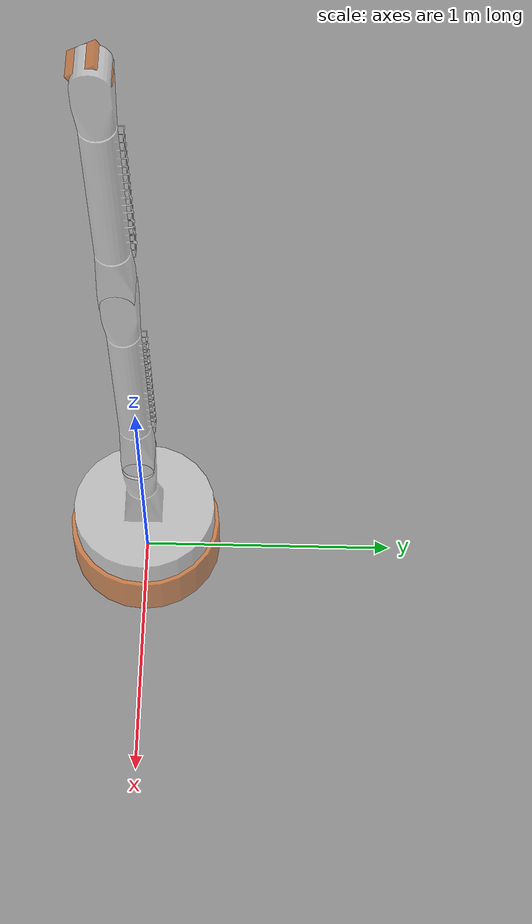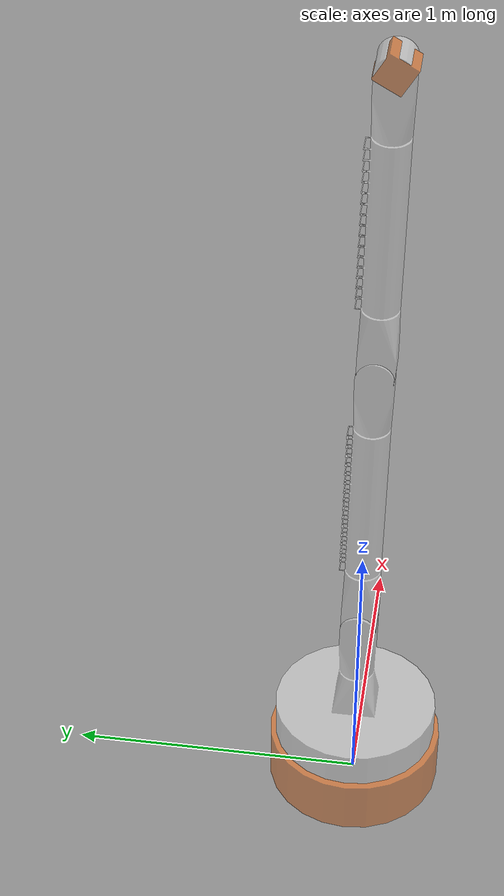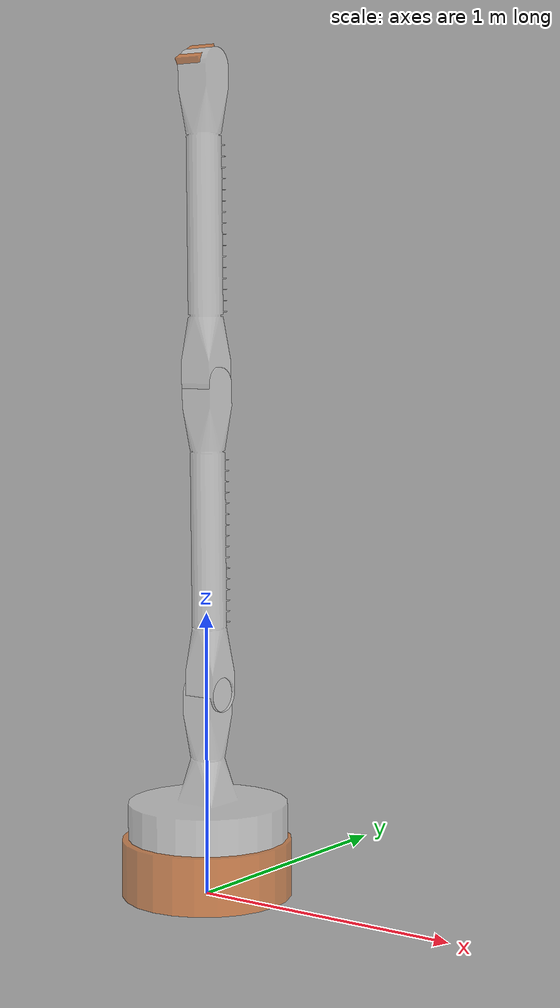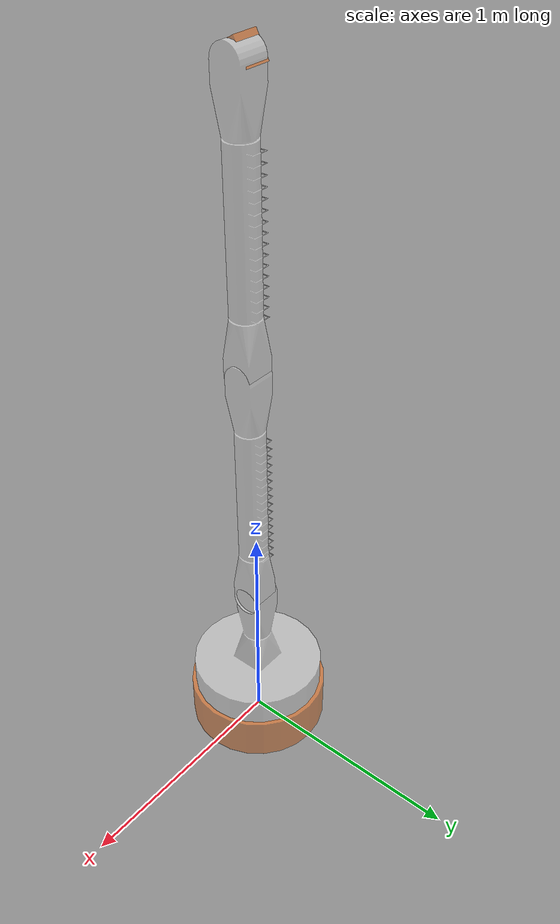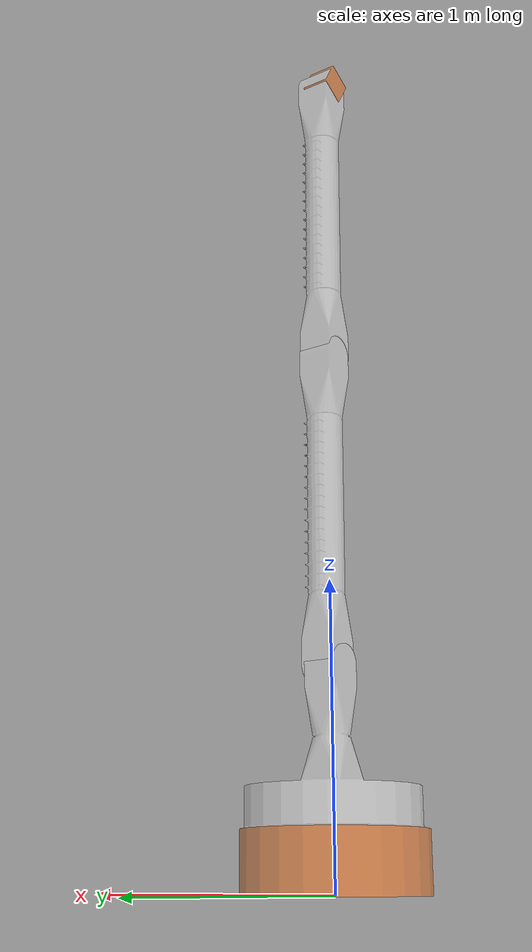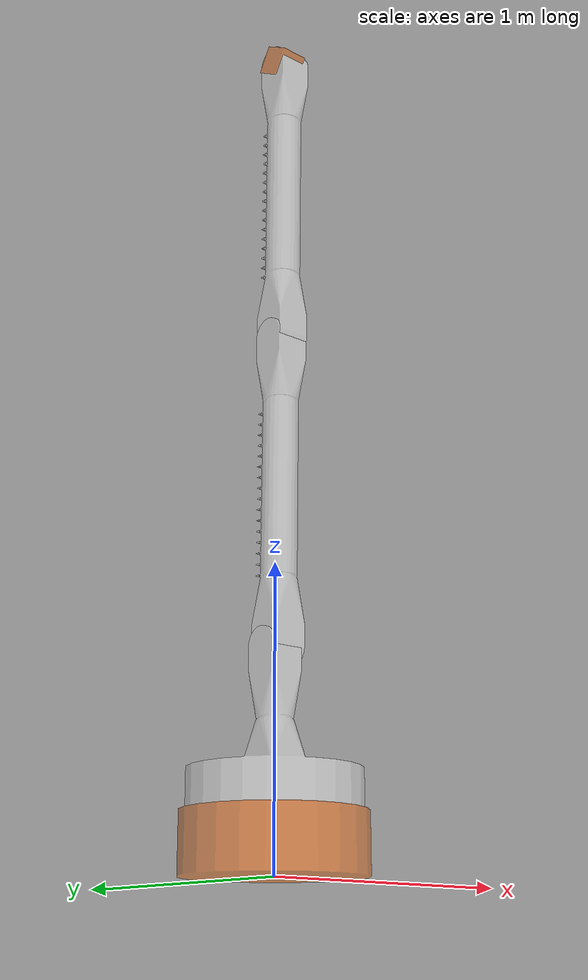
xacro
<?xml version="1.0"?>

<robot name="rrr_bot" xmlns:xacro="http://www.ros.org/wiki/xacro">
    <!-- INCLUDE XACRO-->
    <xacro:include filename="$(find first_rrr)/urdf/names.xacro"/>
    <xacro:include filename="$(find first_rrr)/urdf/material.xacro"/>
    <xacro:include filename="$(find first_rrr)/urdf/robot_rrr.gazebo"/>
    <!-- Virtual link of world SDR-->
    <link name="world"/>

    <link name="${b_l}">
        <visual>
            <origin xyz="0 0 0.1" rpy="0 0 0"/>
            <geometry>
                <cylinder radius="0.3" length="0.2"/>
            </geometry>
            <material name="orange"/>
        </visual>
        <collision>
            <origin xyz="0 0 0.1" rpy="0 0 0"/>
            <geometry>
                <cylinder radius="0.3" length="0.2"/>
            </geometry>
        </collision>
        <inertial>
            <origin xyz="0 0 0.1" rpy="0 0 0"/>
            <mass value="${mass_l1}"/>
            <inertia
            ixx="${inertial}" ixy="0.0" ixz="0.0"
            iyy="${inertial}" iyz="0.0"
            izz="${inertial}"/>
        </inertial>
    </link>

    <joint name="world_robot_fix_jnt" type="fixed">
        <parent link="world"/>
        <child link="${b_l}"/>
    </joint>

    <link name="${l1}">
        <visual>
            <origin xyz="0 0 0" rpy="0 0 0"/>
            <geometry>
            <mesh filename="package://first_rrr/urdf/STL/base.stl" scale="0.1 0.1 0.1"/>
            </geometry>
            <material name="white"/>
        </visual>
        <collision>
            <origin xyz="0 0 0" rpy="0 0 0"/>
            <geometry>
                <cylinder radius="0.3" length="0.319"/>
            </geometry>
        </collision>
        <inertial>
            <origin xyz="0 0 0.1" rpy="0 0 0"/>
            <mass value="${mass_l1}"/>
            <inertia
            ixx="${inertial}" ixy="0.0" ixz="0.0"
            iyy="${inertial}" iyz="0.0"
            izz="${inertial}"/>
        </inertial>
    </link>

    <joint name="${j1}" type="continuous">
        <parent link="${b_l}"/>
        <child link="${l1}"/>
        <origin xyz="0 0 0.2"/>
        <axis xyz="0 0 1"/>
    </joint>

    <link name="${l2}">
        <visual>
            <origin xyz="0 -0.005 -0.065" rpy="0 0 0"/>
            <geometry>
            <mesh filename="package://first_rrr/urdf/STL/birinci_kol.stl" scale="0.1 0.1 0.1"/>

            </geometry>
            <material name="white"/>
        </visual>
        <inertial>
            <origin xyz="0 0 0.1" rpy="0 0 0"/>
            <mass value="${mass_l1}"/>
            <inertia
            ixx="${inertial}" ixy="0.0" ixz="0.0"
            iyy="${inertial}" iyz="0.0"
            izz="${inertial}"/>
        </inertial>
        <collision>
             <origin xyz="0 0 0.5" rpy="0 0 0"/>
            <geometry>
                <cylinder radius="0.1" length="1.3"/>
            </geometry>
        </collision>
    </link>
     <joint name="${j2}" type="continuous">
        <parent link="${l1}"/>
        <child link="${l2}"/>
        <origin xyz="0 0.0005 0.519" rpy="${PI/6} 0 0"/>
        <axis xyz="1 0 0"/>

    </joint>
<link name="${l3}">
    <visual>
        <origin xyz="0 -0.005 -0.065" rpy="0 0 0"/>
        <geometry>
        <mesh filename="package://first_rrr/urdf/STL/birinci_kol.stl" scale="0.1 0.1 0.1"/>

        </geometry>
        <material name="white"/>
    </visual>
    <inertial>
        <origin xyz="0 0 0.1" rpy="0 0 0"/>
        <mass value="${mass_l1}"/>
        <inertia
        ixx="${inertial}" ixy="0.0" ixz="0.0"
        iyy="${inertial}" iyz="0.0"
        izz="${inertial}"/>
    </inertial>
    <collision>
            <origin xyz="0 0 0.5" rpy="0 0 0"/>
        <geometry>
            <cylinder radius="0.1" length="1.3"/>
        </geometry>
    </collision>
</link>
    <joint name="${j3}" type="continuous">
    <parent link="${l2}"/>
    <child link="${l3}"/>
    <origin xyz="0 0.53 0.95" rpy="0 0 0"/>
    <axis xyz="1 0 0"/>

</joint>
<link name="${l4}">
    <visual>
        <origin xyz="0 0 0" rpy="0 0 0"/>
        <geometry>
            <box size="0.1 0.1 0.1"/>

        </geometry>
        <material name="orange"/>
    </visual>
    <inertial>
        <origin xyz="0 0 0.1" rpy="0 0 0"/>
        <mass value="${mass_l1}"/>
        <inertia
        ixx="${inertial}" ixy="0.0" ixz="0.0"
        iyy="${inertial}" iyz="0.0"
        izz="${inertial}"/>
    </inertial>
    <collision>
            <origin xyz="0 0 0" rpy="0 0 0"/>
        <geometry>
            <box size="0.1 0.1 0.1"/>
        </geometry>
    </collision>
</link>
    <joint name="ee_joint" type="fixed">
    <parent link="${l3}"/>
    <child link="${l4}"/>
    <origin xyz="0 0.53 0.95" rpy="0 0 0"/>

</joint>
    <transmission name="tran1">
        <type>transmission_interface/SimpleTransmission</type>
        <joint name="${j1}">
            <hardwareInterface>hardware_interface/EffortJointInterface</hardwareInterface>
        </joint>
        <actuator name="motor1">
            <hardwareInterface>hardware_interface/EffortJointInterface</hardwareInterface>
            <mechanicalReduction>1</mechanicalReduction>
        </actuator>
    </transmission>

    <transmission name="tran2">
        <type>transmission_interface/SimpleTransmission</type>
        <joint name="${j2}">
        <hardwareInterface>hardware_interface/EffortJointInterface</hardwareInterface>
        </joint>
        <actuator name="motor2">
            <hardwareInterface>hardware_interface/EffortJointInterface</hardwareInterface>
            <mechanicalReduction>1</mechanicalReduction>
        </actuator>
    </transmission>

    <transmission name="tran3">
        <type>transmission_interface/SimpleTransmission</type>
        <joint name="${j3}">
        <hardwareInterface>hardware_interface/EffortJointInterface</hardwareInterface>
        </joint>
        <actuator name="motor3">
            <hardwareInterface>hardware_interface/EffortJointInterface</hardwareInterface>
            <mechanicalReduction>1</mechanicalReduction>
        </actuator>
    </transmission>
</robot>

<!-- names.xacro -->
<robot  xmlns:xacro="http://www.ros.org/wiki/xacro">
    <xacro:property name="b_l"  value="base_link"/>
    <xacro:property name="l1"   value="first_link"/>
    <xacro:property name="l2"   value="second_link"/>
    <xacro:property name="l3"   value="third_link"/>
    <xacro:property name="l4"   value="end_effector_link"/>
    <xacro:property name="j1"   value="jnt_1"/>
    <xacro:property name="j2"   value="jnt_2"/>
    <xacro:property name="j3"   value="jnt_3"/>
    <xacro:property name="mass_l1" value="1"/>
    <xacro:property name="mass_l"  value="0.5"/>
    <xacro:property name="inertial" value="0.7"/>
    <xacro:property name="PI"  value="3.1415"/>
</robot>

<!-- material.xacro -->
<robot xmlns:xacro="http://www.ros.org/wiki/xacro">

  <material name="black">
    <color rgba="0.0 0.0 0.0 1.0"/>
  </material>

  <material name="blue">
    <color rgba="0.0 0.0 0.8 1.0"/>
  </material>

  <material name="green">
    <color rgba="0.0 0.8 0.0 1.0"/>
  </material>

  <material name="grey">
    <color rgba="0.2 0.2 0.2 1.0"/>
  </material>

  <material name="orange">
    <color rgba="${255/255} ${108/255} ${10/255} 0.5"/>
  </material>

  <material name="brown">
    <color rgba="${222/255} ${207/255} ${195/255} 1.0"/>
  </material>

  <material name="red">
    <color rgba="0.8 0.0 0.0 1.0"/>
  </material>

  <material name="white">
    <color rgba="1.0 1.0 1.0 0.4"/>
  </material>

</robot>
